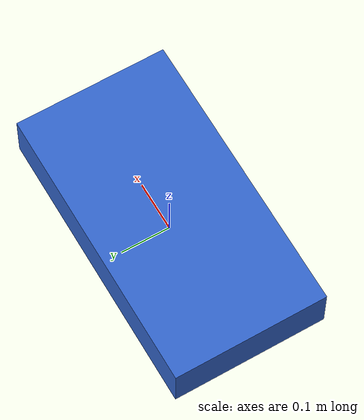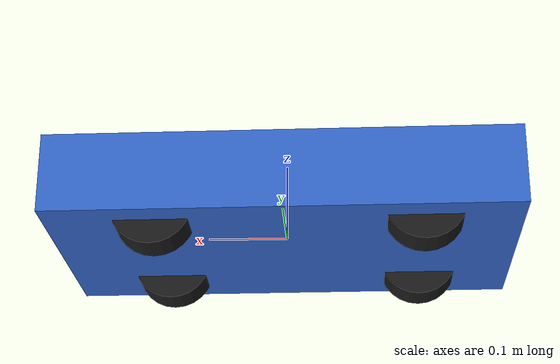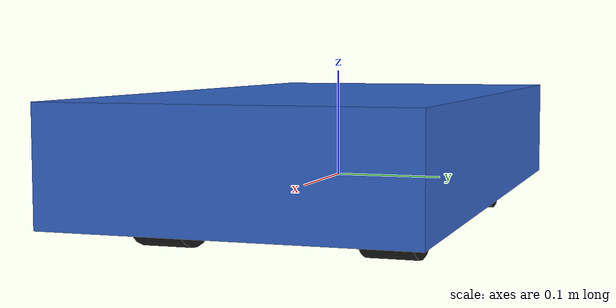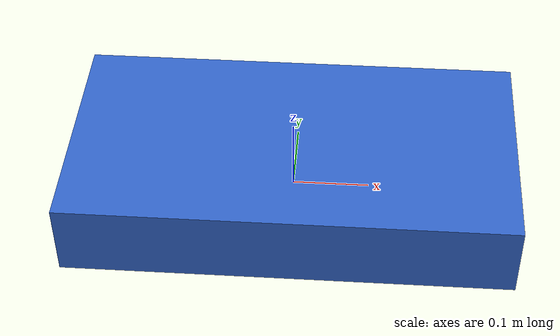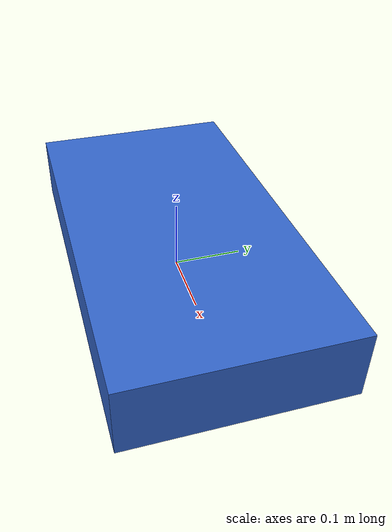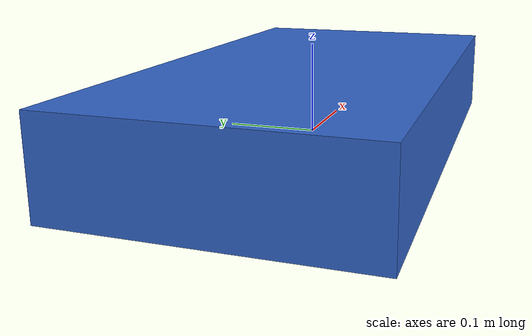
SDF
<?xml version="1.0"?>
<sdf version="1.9">
  <model name="racecar">
    <!-- Origin at the centre of gravity, z = wheel radius so the wheels touch the ground. -->
    <link name="chassis">
      <inertial><mass>3.74</mass><inertia><ixx>0.0330678</ixx><iyy>0.107961</iyy><izz>0.134796</izz></inertia></inertial>
      <collision name="c"><pose>0 0 0.03 0 0 0</pose><geometry><box><size>0.58 0.31 0.1</size></box></geometry></collision>
      <visual name="v"><pose>0 0 0.03 0 0 0</pose><geometry><box><size>0.58 0.31 0.1</size></box></geometry>
        <material><ambient>0.2 0.4 0.8 1</ambient><diffuse>0.2 0.4 0.8 1</diffuse></material></visual>
      <!-- the chassis box is the car's footprint; this sensor says when it touches anything -->
      <sensor name="bumper" type="contact">
        <contact><collision>c</collision></contact>
        <update_rate>100</update_rate><always_on>1</always_on>
      </sensor>
      <sensor name="imu" type="imu">
        <always_on>1</always_on><update_rate>100</update_rate>
      </sensor>
      <sensor name="lidar" type="gpu_lidar">
        <!-- Hokuyo UST-10LX as the 2020 model had it: 1081 points over 270 degrees, 0.1 to 10 m, 40 Hz -->
        <pose>0.09355 0 0.115 0 0 0</pose>
        <update_rate>40</update_rate>
        <lidar>
          <scan><horizontal><samples>1081</samples><resolution>1</resolution>
            <min_angle>-2.3561944902</min_angle><max_angle>2.3561944902</max_angle></horizontal></scan>
          <range><min>0.1</min><max>10.0</max><resolution>0.01</resolution></range>
        </lidar>
        <always_on>1</always_on><visualize>0</visualize>
      </sensor>
    </link>

    <link name="rear_left_wheel">
      <pose>-0.17145 0.1 0 1.5708 0 0</pose>
      <inertial><mass>0.34</mass><inertia><ixx>0.000269875</ixx><iyy>0.000269875</iyy><izz>0.000425</izz></inertia></inertial>
      <collision name="c"><geometry><cylinder><radius>0.05</radius><length>0.045</length></cylinder></geometry>
        <surface><friction><ode><mu>1.0</mu><mu2>1.0</mu2></ode></friction></surface></collision>
      <visual name="v"><geometry><cylinder><radius>0.05</radius><length>0.045</length></cylinder></geometry>
        <material><ambient>0.1 0.1 0.1 1</ambient><diffuse>0.1 0.1 0.1 1</diffuse></material></visual>
    </link>

    <link name="rear_right_wheel">
      <pose>-0.17145 -0.1 0 1.5708 0 0</pose>
      <inertial><mass>0.34</mass><inertia><ixx>0.000269875</ixx><iyy>0.000269875</iyy><izz>0.000425</izz></inertia></inertial>
      <collision name="c"><geometry><cylinder><radius>0.05</radius><length>0.045</length></cylinder></geometry>
        <surface><friction><ode><mu>1.0</mu><mu2>1.0</mu2></ode></friction></surface></collision>
      <visual name="v"><geometry><cylinder><radius>0.05</radius><length>0.045</length></cylinder></geometry>
        <material><ambient>0.1 0.1 0.1 1</ambient><diffuse>0.1 0.1 0.1 1</diffuse></material></visual>
    </link>

    <link name="front_left_hinge">
      <pose>0.15875 0.1 0 0 0 0</pose>
      <inertial><mass>0.1</mass><inertia><ixx>4e-6</ixx><iyy>4e-6</iyy><izz>4e-6</izz></inertia></inertial>
    </link>

    <link name="front_right_hinge">
      <pose>0.15875 -0.1 0 0 0 0</pose>
      <inertial><mass>0.1</mass><inertia><ixx>4e-6</ixx><iyy>4e-6</iyy><izz>4e-6</izz></inertia></inertial>
    </link>

    <link name="front_left_wheel">
      <pose>0.15875 0.1 0 1.5708 0 0</pose>
      <inertial><mass>0.34</mass><inertia><ixx>0.000269875</ixx><iyy>0.000269875</iyy><izz>0.000425</izz></inertia></inertial>
      <collision name="c"><geometry><cylinder><radius>0.05</radius><length>0.045</length></cylinder></geometry>
        <surface><friction><ode><mu>1.0</mu><mu2>1.0</mu2></ode></friction></surface></collision>
      <visual name="v"><geometry><cylinder><radius>0.05</radius><length>0.045</length></cylinder></geometry>
        <material><ambient>0.1 0.1 0.1 1</ambient><diffuse>0.1 0.1 0.1 1</diffuse></material></visual>
    </link>

    <link name="front_right_wheel">
      <pose>0.15875 -0.1 0 1.5708 0 0</pose>
      <inertial><mass>0.34</mass><inertia><ixx>0.000269875</ixx><iyy>0.000269875</iyy><izz>0.000425</izz></inertia></inertial>
      <collision name="c"><geometry><cylinder><radius>0.05</radius><length>0.045</length></cylinder></geometry>
        <surface><friction><ode><mu>1.0</mu><mu2>1.0</mu2></ode></friction></surface></collision>
      <visual name="v"><geometry><cylinder><radius>0.05</radius><length>0.045</length></cylinder></geometry>
        <material><ambient>0.1 0.1 0.1 1</ambient><diffuse>0.1 0.1 0.1 1</diffuse></material></visual>
    </link>

    <joint name="rear_left_wheel_joint" type="revolute">
      <parent>chassis</parent><child>rear_left_wheel</child>
      <axis><xyz expressed_in="__model__">0 1 0</xyz><limit><lower>-1e16</lower><upper>1e16</upper></limit></axis>
    </joint>
    <joint name="rear_right_wheel_joint" type="revolute">
      <parent>chassis</parent><child>rear_right_wheel</child>
      <axis><xyz expressed_in="__model__">0 1 0</xyz><limit><lower>-1e16</lower><upper>1e16</upper></limit></axis>
    </joint>
    <joint name="front_left_steer_joint" type="revolute">
      <parent>chassis</parent><child>front_left_hinge</child>
      <axis><xyz>0 0 1</xyz><limit><lower>-0.4189</lower><upper>0.4189</upper><effort>10</effort><velocity>3.2</velocity></limit></axis>
    </joint>
    <joint name="front_right_steer_joint" type="revolute">
      <parent>chassis</parent><child>front_right_hinge</child>
      <axis><xyz>0 0 1</xyz><limit><lower>-0.4189</lower><upper>0.4189</upper><effort>10</effort><velocity>3.2</velocity></limit></axis>
    </joint>
    <joint name="front_left_wheel_joint" type="revolute">
      <parent>front_left_hinge</parent><child>front_left_wheel</child>
      <axis><xyz expressed_in="__model__">0 1 0</xyz><limit><lower>-1e16</lower><upper>1e16</upper></limit></axis>
    </joint>
    <joint name="front_right_wheel_joint" type="revolute">
      <parent>front_right_hinge</parent><child>front_right_wheel</child>
      <axis><xyz expressed_in="__model__">0 1 0</xyz><limit><lower>-1e16</lower><upper>1e16</upper></limit></axis>
    </joint>

    <plugin filename="gz-sim-joint-state-publisher-system" name="gz::sim::systems::JointStatePublisher">
      <joint_name>front_left_steer_joint</joint_name>
      <joint_name>front_right_steer_joint</joint_name>
      <joint_name>rear_left_wheel_joint</joint_name>
      <joint_name>rear_right_wheel_joint</joint_name>
    </plugin>
  </model>
</sdf>
